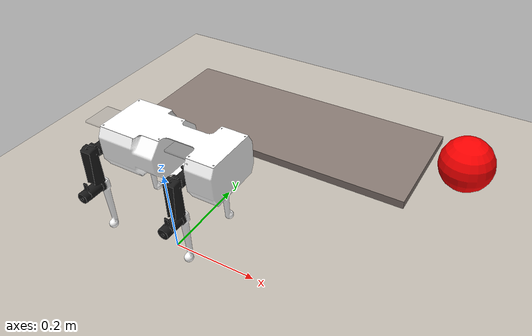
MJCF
<mujoco model="Pupper">
<compiler angle="radian" meshdir="mesh/" texturedir="texture/"/>

<default>
    <joint type="hinge" limited="true" armature="0.0024" solimplimit="0.9 0.95 0.01" solreflimit="0.01 1" stiffness="0.1" damping="0.5"/>
    <geom conaffinity="0" condim="3" contype="1" friction="0.9 0.005 0.0001" solimp="0.9 0.95 0.01" solref="0.01 1"/>
    <position forcelimited="true"/>
</default>

<option>
    <flag sensornoise="disable"/>
</option>

<size nstack="300000" nuser_geom="1"/>

<option timestep="0.0001"/>

<asset>
    <texture builtin="gradient" height="100" rgb1="1 1 1" rgb2="0 0 0" type="skybox" width="100"/>
    <texture builtin="flat" height="1278" mark="cross" markrgb="1 1 1" name="texgeom" random="0.01" rgb1="0.8 0.6 0.4" rgb2="0.8 0.6 0.4" type="cube" width="127"/>
    <texture builtin="checker" height="100" name="texplane" rgb1="0 0 0" rgb2="0.8 0.8 0.8" type="2d" width="100"/>
    <material name="MatPlane" reflectance="0.5" shininess="1" specular="1" texrepeat="60 60" texture="texplane"/>
    <material name="geom" texture="texgeom" texuniform="true"/>
  <mesh file="TCBody.stl" scale="0.001 0.001 0.001"/>
  <mesh file="M2006.stl" scale=".001 .001 .001" />
  <mesh file="Hub.stl"/>
  <mesh file="ServoHorn.stl"/>
  <mesh file="fcupperleg.stl" scale="0.001 0.001 0.001"/>
  <mesh file="fclowerleg_r.stl" scale="0.001 0.001 0.001"/>
  <mesh file="fclowerleg_l.stl" scale="0.001 0.001 0.001"/>
  <texture type="2d" file="BrushedAluminum.png"/>
  <texture type="2d" file="Oak.png"/>
  <texture type="2d" file="CarbonFiber2D.png" name="CarbonFiber2D"/>
  <texture type="cube" file="CarbonFiber.png" gridsize="3 4" gridlayout=".U..LFRB.D.."/>
  <texture type="cube" file="Marble.png"/>
  <material name="BrushedAluminum" texture="BrushedAluminum" specular="0.9" shininess="0.9" reflectance="0.3"/>
  <material name="CarbonFiber" texture="CarbonFiber" specular="0.9" shininess="0.9" reflectance="0.3"/>
  <material name="M2006" specular="0.9" shininess="0.9" reflectance="0.3" rgba = ".1 .1 .1 1"/>
  <material name="CarbonFiber2D" texture="CarbonFiber2D" specular="0.9" shininess="0.9" reflectance="0.3"/>
  <material name="Oak" texture="Oak" specular="0.9" shininess="0.9" reflectance="0.3" texrepeat="4 4"/>
  <material name="ABS" rgba="1 1 1 1"/>
  <material name="Marble" texture="Marble" rgba=".7 .65 .65 0.9"/>
</asset>

<worldbody>
    <light pos="0.4 -0.2 1.5" dir="-0.4 0.2 -1.5" cutoff="35"/>
    <geom type="plane" material="Oak" size="2 2 .4" conaffinity="1" condim="3" name="floor"/>
    <body>
      <joint type="free" limited="false" damping=".3"/>
      <geom type="sphere" material="BrushedAluminum" pos="0.5 0.5 0.07" size="0.07" conaffinity="1" condim="3" name="ball1" rgba="1 0 0 1"/>
    </body>
    <geom type="box" material="Marble" pos="0 0.5 0.011" size="0.4 0.15 0.011" conaffinity="1" condim="3" name="obstacle"/>
    <body name="torso" pos="0 0 0.27">
        <camera name="track" mode="trackcom" pos="0 -2 0.3" xyaxes="1 0 0 0 0 1"/>
        <freejoint/>
        <body pos="0.0 0.0 -0.03425" quat="-0.7071068 0 0 0.7071068">
          <camera name="puppercam" pos="0 0.12 0.11" quat="0.7453559925 0.6666666 0 0"/>
          <geom type="mesh" mesh="TCBody" pos="0 -0.08 0.05" quat="0 0 0.7071068 0.7071068" material="ABS"/>
          <site type="box" pos="0 0 0.0666" size="0.03 0.15 0.002" material="CarbonFiber" rgba=".5 .5 .5 .1"/>
          <!--fr servo-->

          <!--fl servo-->

          <!--br servo-->

        </body>

        <body name="fr_module" pos="0.1 -0.04 0">
            <body pos="-0.02 -0.042 0.022" quat="0.7071068 0 0.7071068 0">
              <!-- Why are there two different sites here? Do we even use both of them? -->
              <!--                                            up/down   in/out   front/back-->
              <geom type="mesh" mesh="M2006" material="M2006" pos="0.0355 0.05 0.0355" quat="0.707 -0.707 0 0"/>
            </body>
            <joint name="fr_x" axis="1 0 0" range="-1.57 1.57"/>
            <body name="fr" pos="0 -0.03 0">
                <joint name="fr_y" axis="0 1 0" range="-1.57 1.57"/>
                  <body name = "frup" pos = "0 0 0" quat=".5 -.5 -.5 .5">
                <geom axisangle="0 1 0 0" name="fr" size="0.01" type="mesh" mesh="fcupperleg" material="M2006" density="50"/>
              </body>
                <body name="fr2" pos="0 0 -0.0785" quat="0 0 -.707 .707">
                    <!--                                            front/back up/down in/out -->
                    <body name = "frlow" pos = "0 0 0" quat="0 -1 0 0">
                      <joint name="fr_y2" axis="0 0 1" range="-3.14 0.0"/>
                    <geom axisangle="0 0 1 0" name="fr_l2"  size="0.01" type="mesh" mesh="fclowerleg_r" rgba = "1 1 1 1" density="50"/>
                  </body>
                </body>
            </body>
        </body>

        <body name="fl_module" pos="0.1 0.04 0">
            <body pos="-0.022 0.042 -0.004" quat="0 0.7071068 0 0.7071068">
                            <!-- Why are there two different sites here? Do we even use both of them? -->
              <!--                                            up/down   in/out   front/back-->
              <geom type="mesh" mesh="M2006" material="M2006" pos="0.018 0.05 0.0365" quat="0.707 -0.707 0 0"/>
            </body>
            <joint name="fl_x" axis="1 0 0" range="-1.57 1.57"/>
            <body name="fl" pos="0 0.03 0">
                <joint name="fl_y" axis="0 1 0" range="-1.57 1.57"/>
                <body name = "flup" pos = "0 0 0" quat=".5 -.5 .5 -.5">
              <geom axisangle="0 1 0 0" name="fl" size="0.01" type="mesh" mesh="fcupperleg" material="M2006" density="50"/>
            </body>
                <body name="fl2" pos="0 0 -0.0785">
                    <!--                                            front/back in/out up/down -->
                    <body name = "fllow" pos = "0 0 0" quat="0 0 .707 .707">
                      <joint name="fl_y2" axis="0 0 1" range="-3.14 0.0"/>
                    <geom axisangle="0 1 0 0" name="fl_l2"  size="0.01" type="mesh" mesh="fclowerleg_l" rgba = "1 1 1 1" density="50"/>
                  </body>
                </body>
            </body>
        </body>

        <body name="br_module" pos="-0.1 -0.04 0">
            <body pos="-0.02 -0.042 0.022" quat="0.7071068 0 0.7071068 0">
              <!-- Why are there two different sites here? Do we even use both of them? -->
              <!--                                            up/down   in/out   front/back-->
              <geom type="mesh" mesh="M2006" material="M2006" pos="0.0355 0.05 0.0355" quat="0.707 -0.707 0 0"/>
            </body>
            <joint name="br_x" axis="1 0 0" range="-1.57 1.57"/>
            <body name="br" pos="0 -0.03 0">
                <joint name="br_y" axis="0 1 0" range="-1.57 1.57"/>
                <body name = "brup" pos = "0 0 0" quat=".5 -.5 -.5 .5">
              <geom axisangle="0 1 0 0" name="br" size="0.01" type="mesh" mesh="fcupperleg" material="M2006" density="50"/>
              </body>
                <body name="br2" pos="0 0 -0.0785" quat="0 0 -.707 .707">
                    <!--                                            front/back up/down in/out -->
                    <body name = "brlow" pos = "0 0 0" quat="0 -1 0 0">
                      <joint name="br_y2" axis="0 0 1" range="-3.14 0.0"/>
                    <geom axisangle="0 1 0 0" name="br_l2"  size="0.01" type="mesh" mesh="fclowerleg_r" rgba = "1 1 1 1" density="50"/>
                  </body>
                </body>
            </body>
        </body>

        <body name="bl_module" pos="-0.1 0.04 0">
            <body pos="-0.022 0.042 -0.004" quat="0 0.7071068 0 0.7071068">
              <!-- Why are there two different sites here? Do we even use both of them? -->
              <!--                                            up/down   in/out   front/back-->
              <geom type="mesh" mesh="M2006" material="M2006" pos="0.018 0.05 0.0365" quat="0.707 -0.707 0 0"/>
            </body>
            <joint name="bl_x" axis="1 0 0" range="-1.57 1.57"/>
            <body name="bl" pos="0 0.03 0">
                <joint name="bl_y" axis="0 1 0" range="-1.57 1.57"/>
                <body name = "blup" pos = "0 0 0" quat=".5 -.5 .5 -.5">
              <geom axisangle="0 1 0 0" name="bl" size="0.01" type="mesh" mesh="fcupperleg" material="M2006" density="50"/>
            </body>
                <body name="bl2" pos="0 0 -0.0785">
                    <!--                                            front/back in/out up/down -->
                    <body name = "bllow" pos = "0 0 0" quat="0 0 .707 .707">
                      <joint name="bl_y2" axis="0 0 1" range="-3.14 0.0"/>
                    <geom axisangle="0 1 0 0" name="bl_l2"  size="0.01" type="mesh" mesh="fclowerleg_l" rgba = "1 1 1 1" density="50"/>
                  </body>
                </body>
            </body>
        </body>
    </body>
</worldbody>

<actuator>
  <!-- kp: Position feedback gain.  -->
  <!-- forcerange: Range for clamping the force output. The compiler expects the first value to be no greater than the second value.  -->
      <position gear="1" joint="fr_x" name="fr_x"   kp="300" forcerange="-6.0 6.0"/>
      <position gear="1" joint="fr_y" name="fr_y"   kp="300" forcerange="-6.0 6.0"/>
      <position gear="1" joint="fr_y2" name="fr_y2" kp="300" forcerange="-6.0 6.0"/>

      <position gear="1" joint="fl_x" name="fl_x"   kp="300" forcerange="-6.0 6.0"/>
      <position gear="1" joint="fl_y" name="fl_y"   kp="300" forcerange="-6.0 6.0"/>
      <position gear="1" joint="fl_y2" name="fl_y2" kp="300" forcerange="-6.0 6.0"/>

      <position gear="1" joint="br_x" name="br_x"   kp="300" forcerange="-6.0 6.0"/>
      <position gear="1" joint="br_y" name="br_y"   kp="300" forcerange="-6.0 6.0"/>
      <position gear="1" joint="br_y2" name="br_y2" kp="300" forcerange="-6.0 6.0"/>

      <position gear="1" joint="bl_x" name="bl_x"   kp="300" forcerange="-6.0 6.0"/>
      <position gear="1" joint="bl_y" name="bl_y"   kp="300" forcerange="-6.0 6.0"/>
      <position gear="1" joint="bl_y2" name="bl_y2" kp="300" forcerange="-6.0 6.0"/>
</actuator>
</mujoco>
